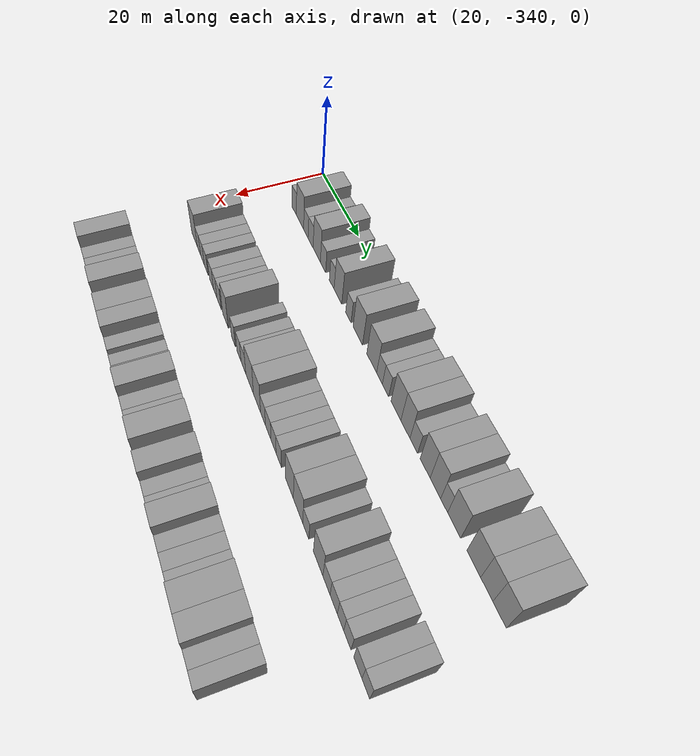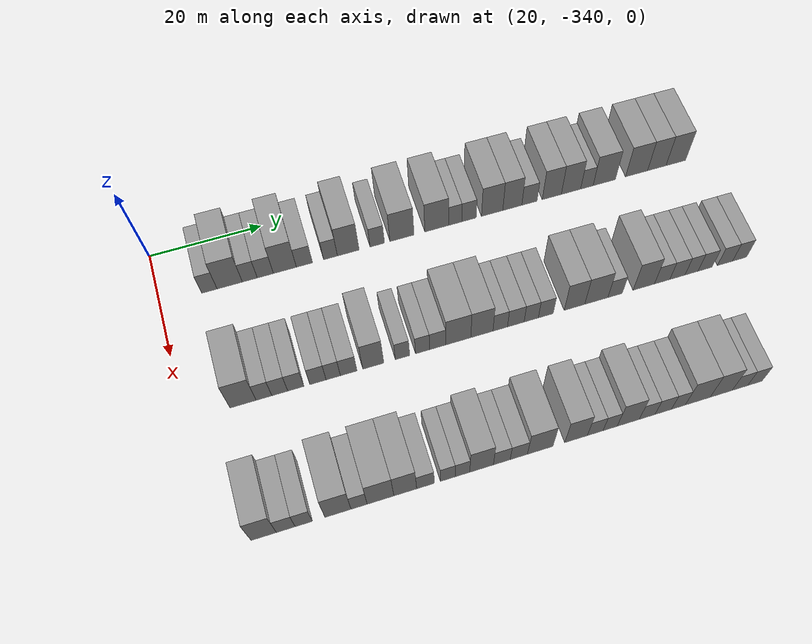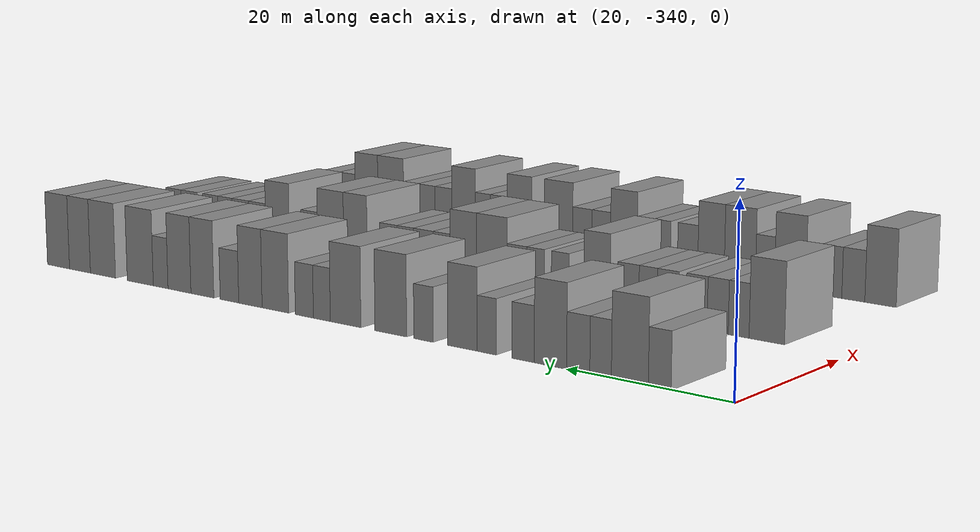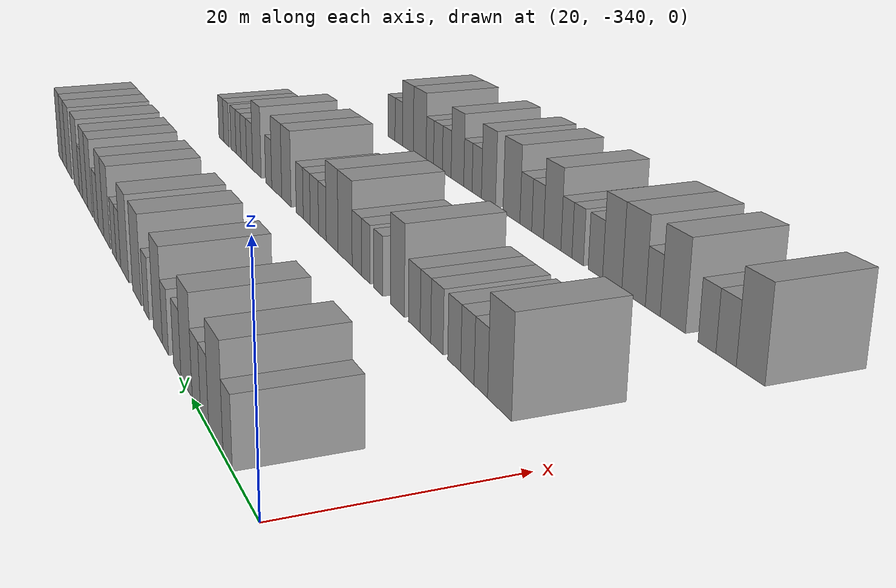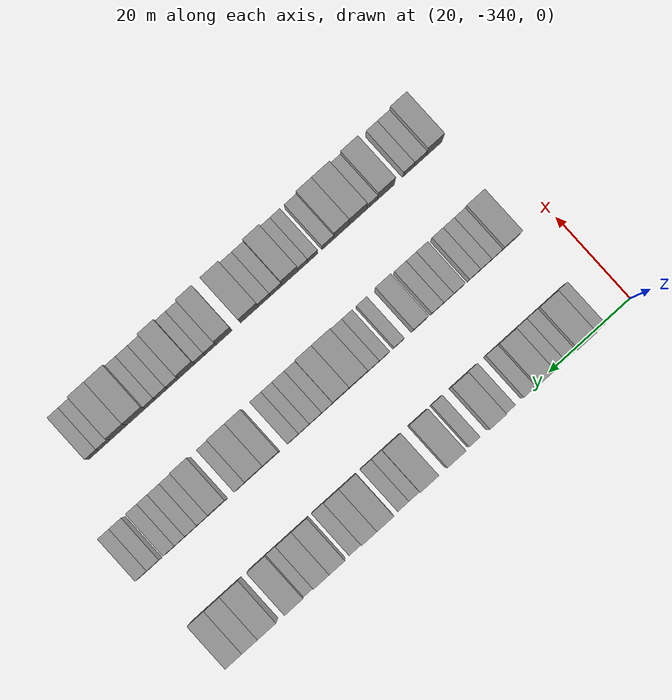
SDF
<sdf version="1.6">
 <world name="default">
  <model name="building_14">
   <static>1</static>
   <pose>25.0000 -331.3287 0 0.000000 0.000000 0.000000</pose>
   <link name="link">
    <pose>0 0 3.00 0 0 0</pose>
    <collision name="collision"><geometry><box><size>10.0000 2.6767 6.0000</size></box></geometry></collision>
    <visual name="visual">
     <cast_shadows>0</cast_shadows>
     <geometry><box><size>10.0000 2.6767 6.0000</size></box></geometry>
     <material>
      <script>
       <uri>model://grey_wall/materials/scripts</uri>
       <uri>model://grey_wall/materials/textures</uri>
       <name>vrc/grey_wall</name>
      </script>
     </material>
    </visual>
   </link>
  </model>
  <model name="building_15">
   <static>1</static>
   <pose>25.0000 -327.7732 0 0.000000 0.000000 0.000000</pose>
   <link name="link">
    <pose>0 0 4.50 0 0 0</pose>
    <collision name="collision"><geometry><box><size>10.0000 4.4344 9.0000</size></box></geometry></collision>
    <visual name="visual">
     <cast_shadows>0</cast_shadows>
     <geometry><box><size>10.0000 4.4344 9.0000</size></box></geometry>
     <material>
      <script>
       <uri>model://grey_wall/materials/scripts</uri>
       <uri>model://grey_wall/materials/textures</uri>
       <name>vrc/grey_wall</name>
      </script>
     </material>
    </visual>
   </link>
  </model>
  <model name="building_16">
   <static>1</static>
   <pose>25.0000 -324.2370 0 0.000000 0.000000 0.000000</pose>
   <link name="link">
    <pose>0 0 3.00 0 0 0</pose>
    <collision name="collision"><geometry><box><size>10.0000 2.6379 6.0000</size></box></geometry></collision>
    <visual name="visual">
     <cast_shadows>0</cast_shadows>
     <geometry><box><size>10.0000 2.6379 6.0000</size></box></geometry>
     <material>
      <script>
       <uri>model://grey_wall/materials/scripts</uri>
       <uri>model://grey_wall/materials/textures</uri>
       <name>vrc/grey_wall</name>
      </script>
     </material>
    </visual>
   </link>
  </model>
  <model name="building_17">
   <static>1</static>
   <pose>25.0000 -321.4824 0 0.000000 0.000000 0.000000</pose>
   <link name="link">
    <pose>0 0 3.00 0 0 0</pose>
    <collision name="collision"><geometry><box><size>10.0000 2.8713 6.0000</size></box></geometry></collision>
    <visual name="visual">
     <cast_shadows>0</cast_shadows>
     <geometry><box><size>10.0000 2.8713 6.0000</size></box></geometry>
     <material>
      <script>
       <uri>model://grey_wall/materials/scripts</uri>
       <uri>model://grey_wall/materials/textures</uri>
       <name>vrc/grey_wall</name>
      </script>
     </material>
    </visual>
   </link>
  </model>
  <model name="building_18">
   <static>1</static>
   <pose>25.0000 -318.0040 0 0.000000 0.000000 0.000000</pose>
   <link name="link">
    <pose>0 0 4.50 0 0 0</pose>
    <collision name="collision"><geometry><box><size>10.0000 4.0855 9.0000</size></box></geometry></collision>
    <visual name="visual">
     <cast_shadows>0</cast_shadows>
     <geometry><box><size>10.0000 4.0855 9.0000</size></box></geometry>
     <material>
      <script>
       <uri>model://grey_wall/materials/scripts</uri>
       <uri>model://grey_wall/materials/textures</uri>
       <name>vrc/grey_wall</name>
      </script>
     </material>
    </visual>
   </link>
  </model>
  <model name="building_19">
   <static>1</static>
   <pose>25.0000 -314.5131 0 0.000000 0.000000 0.000000</pose>
   <link name="link">
    <pose>0 0 3.00 0 0 0</pose>
    <collision name="collision"><geometry><box><size>10.0000 2.8964 6.0000</size></box></geometry></collision>
    <visual name="visual">
     <cast_shadows>0</cast_shadows>
     <geometry><box><size>10.0000 2.8964 6.0000</size></box></geometry>
     <material>
      <script>
       <uri>model://grey_wall/materials/scripts</uri>
       <uri>model://grey_wall/materials/textures</uri>
       <name>vrc/grey_wall</name>
      </script>
     </material>
    </visual>
   </link>
  </model>
  <model name="building_20">
   <static>1</static>
   <pose>25.0000 -309.8184 0 0.000000 0.000000 0.000000</pose>
   <link name="link">
    <pose>0 0 3.00 0 0 0</pose>
    <collision name="collision"><geometry><box><size>10.0000 2.4929 6.0000</size></box></geometry></collision>
    <visual name="visual">
     <cast_shadows>0</cast_shadows>
     <geometry><box><size>10.0000 2.4929 6.0000</size></box></geometry>
     <material>
      <script>
       <uri>model://grey_wall/materials/scripts</uri>
       <uri>model://grey_wall/materials/textures</uri>
       <name>vrc/grey_wall</name>
      </script>
     </material>
    </visual>
   </link>
  </model>
  <model name="building_21">
   <static>1</static>
   <pose>25.0000 -306.5983 0 0.000000 0.000000 0.000000</pose>
   <link name="link">
    <pose>0 0 4.50 0 0 0</pose>
    <collision name="collision"><geometry><box><size>10.0000 3.9474 9.0000</size></box></geometry></collision>
    <visual name="visual">
     <cast_shadows>0</cast_shadows>
     <geometry><box><size>10.0000 3.9474 9.0000</size></box></geometry>
     <material>
      <script>
       <uri>model://grey_wall/materials/scripts</uri>
       <uri>model://grey_wall/materials/textures</uri>
       <name>vrc/grey_wall</name>
      </script>
     </material>
    </visual>
   </link>
  </model>
  <model name="building_22">
   <static>1</static>
   <pose>25.0000 -301.3023 0 0.000000 0.000000 0.000000</pose>
   <link name="link">
    <pose>0 0 3.00 0 0 0</pose>
    <collision name="collision"><geometry><box><size>10.0000 2.6446 6.0000</size></box></geometry></collision>
    <visual name="visual">
     <cast_shadows>0</cast_shadows>
     <geometry><box><size>10.0000 2.6446 6.0000</size></box></geometry>
     <material>
      <script>
       <uri>model://grey_wall/materials/scripts</uri>
       <uri>model://grey_wall/materials/textures</uri>
       <name>vrc/grey_wall</name>
      </script>
     </material>
    </visual>
   </link>
  </model>
  <model name="building_23">
   <static>1</static>
   <pose>25.0000 -296.7561 0 0.000000 0.000000 0.000000</pose>
   <link name="link">
    <pose>0 0 4.50 0 0 0</pose>
    <collision name="collision"><geometry><box><size>10.0000 4.4478 9.0000</size></box></geometry></collision>
    <visual name="visual">
     <cast_shadows>0</cast_shadows>
     <geometry><box><size>10.0000 4.4478 9.0000</size></box></geometry>
     <material>
      <script>
       <uri>model://grey_wall/materials/scripts</uri>
       <uri>model://grey_wall/materials/textures</uri>
       <name>vrc/grey_wall</name>
      </script>
     </material>
    </visual>
   </link>
  </model>
  <model name="building_24">
   <static>1</static>
   <pose>25.0000 -290.3168 0 0.000000 0.000000 0.000000</pose>
   <link name="link">
    <pose>0 0 4.50 0 0 0</pose>
    <collision name="collision"><geometry><box><size>10.0000 4.4309 9.0000</size></box></geometry></collision>
    <visual name="visual">
     <cast_shadows>0</cast_shadows>
     <geometry><box><size>10.0000 4.4309 9.0000</size></box></geometry>
     <material>
      <script>
       <uri>model://grey_wall/materials/scripts</uri>
       <uri>model://grey_wall/materials/textures</uri>
       <name>vrc/grey_wall</name>
      </script>
     </material>
    </visual>
   </link>
  </model>
  <model name="building_25">
   <static>1</static>
   <pose>25.0000 -286.8578 0 0.000000 0.000000 0.000000</pose>
   <link name="link">
    <pose>0 0 3.00 0 0 0</pose>
    <collision name="collision"><geometry><box><size>10.0000 2.4871 6.0000</size></box></geometry></collision>
    <visual name="visual">
     <cast_shadows>0</cast_shadows>
     <geometry><box><size>10.0000 2.4871 6.0000</size></box></geometry>
     <material>
      <script>
       <uri>model://grey_wall/materials/scripts</uri>
       <uri>model://grey_wall/materials/textures</uri>
       <name>vrc/grey_wall</name>
      </script>
     </material>
    </visual>
   </link>
  </model>
  <model name="building_26">
   <static>1</static>
   <pose>25.0000 -284.2672 0 0.000000 0.000000 0.000000</pose>
   <link name="link">
    <pose>0 0 3.00 0 0 0</pose>
    <collision name="collision"><geometry><box><size>10.0000 2.6942 6.0000</size></box></geometry></collision>
    <visual name="visual">
     <cast_shadows>0</cast_shadows>
     <geometry><box><size>10.0000 2.6942 6.0000</size></box></geometry>
     <material>
      <script>
       <uri>model://grey_wall/materials/scripts</uri>
       <uri>model://grey_wall/materials/textures</uri>
       <name>vrc/grey_wall</name>
      </script>
     </material>
    </visual>
   </link>
  </model>
  <model name="building_27">
   <static>1</static>
   <pose>25.0000 -279.8970 0 0.000000 0.000000 0.000000</pose>
   <link name="link">
    <pose>0 0 4.50 0 0 0</pose>
    <collision name="collision"><geometry><box><size>10.0000 4.0460 9.0000</size></box></geometry></collision>
    <visual name="visual">
     <cast_shadows>0</cast_shadows>
     <geometry><box><size>10.0000 4.0460 9.0000</size></box></geometry>
     <material>
      <script>
       <uri>model://grey_wall/materials/scripts</uri>
       <uri>model://grey_wall/materials/textures</uri>
       <name>vrc/grey_wall</name>
      </script>
     </material>
    </visual>
   </link>
  </model>
  <model name="building_28">
   <static>1</static>
   <pose>25.0000 -276.0623 0 0.000000 0.000000 0.000000</pose>
   <link name="link">
    <pose>0 0 4.50 0 0 0</pose>
    <collision name="collision"><geometry><box><size>10.0000 3.6234 9.0000</size></box></geometry></collision>
    <visual name="visual">
     <cast_shadows>0</cast_shadows>
     <geometry><box><size>10.0000 3.6234 9.0000</size></box></geometry>
     <material>
      <script>
       <uri>model://grey_wall/materials/scripts</uri>
       <uri>model://grey_wall/materials/textures</uri>
       <name>vrc/grey_wall</name>
      </script>
     </material>
    </visual>
   </link>
  </model>
  <model name="building_29">
   <static>1</static>
   <pose>25.0000 -272.7906 0 0.000000 0.000000 0.000000</pose>
   <link name="link">
    <pose>0 0 3.00 0 0 0</pose>
    <collision name="collision"><geometry><box><size>10.0000 2.9201 6.0000</size></box></geometry></collision>
    <visual name="visual">
     <cast_shadows>0</cast_shadows>
     <geometry><box><size>10.0000 2.9201 6.0000</size></box></geometry>
     <material>
      <script>
       <uri>model://grey_wall/materials/scripts</uri>
       <uri>model://grey_wall/materials/textures</uri>
       <name>vrc/grey_wall</name>
      </script>
     </material>
    </visual>
   </link>
  </model>
  <model name="building_30">
   <static>1</static>
   <pose>25.0000 -268.4911 0 0.000000 0.000000 0.000000</pose>
   <link name="link">
    <pose>0 0 4.50 0 0 0</pose>
    <collision name="collision"><geometry><box><size>10.0000 3.6790 9.0000</size></box></geometry></collision>
    <visual name="visual">
     <cast_shadows>0</cast_shadows>
     <geometry><box><size>10.0000 3.6790 9.0000</size></box></geometry>
     <material>
      <script>
       <uri>model://grey_wall/materials/scripts</uri>
       <uri>model://grey_wall/materials/textures</uri>
       <name>vrc/grey_wall</name>
      </script>
     </material>
    </visual>
   </link>
  </model>
  <model name="building_31">
   <static>1</static>
   <pose>25.0000 -264.7799 0 0.000000 0.000000 0.000000</pose>
   <link name="link">
    <pose>0 0 4.50 0 0 0</pose>
    <collision name="collision"><geometry><box><size>10.0000 3.7434 9.0000</size></box></geometry></collision>
    <visual name="visual">
     <cast_shadows>0</cast_shadows>
     <geometry><box><size>10.0000 3.7434 9.0000</size></box></geometry>
     <material>
      <script>
       <uri>model://grey_wall/materials/scripts</uri>
       <uri>model://grey_wall/materials/textures</uri>
       <name>vrc/grey_wall</name>
      </script>
     </material>
    </visual>
   </link>
  </model>
  <model name="building_32">
   <static>1</static>
   <pose>25.0000 -261.6918 0 0.000000 0.000000 0.000000</pose>
   <link name="link">
    <pose>0 0 3.00 0 0 0</pose>
    <collision name="collision"><geometry><box><size>10.0000 2.4328 6.0000</size></box></geometry></collision>
    <visual name="visual">
     <cast_shadows>0</cast_shadows>
     <geometry><box><size>10.0000 2.4328 6.0000</size></box></geometry>
     <material>
      <script>
       <uri>model://grey_wall/materials/scripts</uri>
       <uri>model://grey_wall/materials/textures</uri>
       <name>vrc/grey_wall</name>
      </script>
     </material>
    </visual>
   </link>
  </model>
  <model name="building_33">
   <static>1</static>
   <pose>25.0000 -258.2881 0 0.000000 0.000000 0.000000</pose>
   <link name="link">
    <pose>0 0 4.50 0 0 0</pose>
    <collision name="collision"><geometry><box><size>10.0000 4.3746 9.0000</size></box></geometry></collision>
    <visual name="visual">
     <cast_shadows>0</cast_shadows>
     <geometry><box><size>10.0000 4.3746 9.0000</size></box></geometry>
     <material>
      <script>
       <uri>model://grey_wall/materials/scripts</uri>
       <uri>model://grey_wall/materials/textures</uri>
       <name>vrc/grey_wall</name>
      </script>
     </material>
    </visual>
   </link>
  </model>
  <model name="building_34">
   <static>1</static>
   <pose>25.0000 -251.9306 0 0.000000 0.000000 0.000000</pose>
   <link name="link">
    <pose>0 0 4.50 0 0 0</pose>
    <collision name="collision"><geometry><box><size>10.0000 4.3406 9.0000</size></box></geometry></collision>
    <visual name="visual">
     <cast_shadows>0</cast_shadows>
     <geometry><box><size>10.0000 4.3406 9.0000</size></box></geometry>
     <material>
      <script>
       <uri>model://grey_wall/materials/scripts</uri>
       <uri>model://grey_wall/materials/textures</uri>
       <name>vrc/grey_wall</name>
      </script>
     </material>
    </visual>
   </link>
  </model>
  <model name="building_35">
   <static>1</static>
   <pose>25.0000 -247.9200 0 0.000000 0.000000 0.000000</pose>
   <link name="link">
    <pose>0 0 4.50 0 0 0</pose>
    <collision name="collision"><geometry><box><size>10.0000 3.6805 9.0000</size></box></geometry></collision>
    <visual name="visual">
     <cast_shadows>0</cast_shadows>
     <geometry><box><size>10.0000 3.6805 9.0000</size></box></geometry>
     <material>
      <script>
       <uri>model://grey_wall/materials/scripts</uri>
       <uri>model://grey_wall/materials/textures</uri>
       <name>vrc/grey_wall</name>
      </script>
     </material>
    </visual>
   </link>
  </model>
  <model name="building_36">
   <static>1</static>
   <pose>25.0000 -244.1169 0 0.000000 0.000000 0.000000</pose>
   <link name="link">
    <pose>0 0 4.50 0 0 0</pose>
    <collision name="collision"><geometry><box><size>10.0000 3.9257 9.0000</size></box></geometry></collision>
    <visual name="visual">
     <cast_shadows>0</cast_shadows>
     <geometry><box><size>10.0000 3.9257 9.0000</size></box></geometry>
     <material>
      <script>
       <uri>model://grey_wall/materials/scripts</uri>
       <uri>model://grey_wall/materials/textures</uri>
       <name>vrc/grey_wall</name>
      </script>
     </material>
    </visual>
   </link>
  </model>
  <model name="building_203">
   <static>1</static>
   <pose>47.0000 -330.2119 0 0.000000 0.000000 0.000000</pose>
   <link name="link">
    <pose>0 0 4.50 0 0 0</pose>
    <collision name="collision"><geometry><box><size>10.0000 4.3527 9.0000</size></box></geometry></collision>
    <visual name="visual">
     <cast_shadows>0</cast_shadows>
     <geometry><box><size>10.0000 4.3527 9.0000</size></box></geometry>
     <material>
      <script>
       <uri>model://grey_wall/materials/scripts</uri>
       <uri>model://grey_wall/materials/textures</uri>
       <name>vrc/grey_wall</name>
      </script>
     </material>
    </visual>
   </link>
  </model>
  <model name="building_204">
   <static>1</static>
   <pose>47.0000 -326.7335 0 0.000000 0.000000 0.000000</pose>
   <link name="link">
    <pose>0 0 3.00 0 0 0</pose>
    <collision name="collision"><geometry><box><size>10.0000 2.6040 6.0000</size></box></geometry></collision>
    <visual name="visual">
     <cast_shadows>0</cast_shadows>
     <geometry><box><size>10.0000 2.6040 6.0000</size></box></geometry>
     <material>
      <script>
       <uri>model://grey_wall/materials/scripts</uri>
       <uri>model://grey_wall/materials/textures</uri>
       <name>vrc/grey_wall</name>
      </script>
     </material>
    </visual>
   </link>
  </model>
  <model name="building_205">
   <static>1</static>
   <pose>47.0000 -324.0924 0 0.000000 0.000000 0.000000</pose>
   <link name="link">
    <pose>0 0 3.00 0 0 0</pose>
    <collision name="collision"><geometry><box><size>10.0000 2.6783 6.0000</size></box></geometry></collision>
    <visual name="visual">
     <cast_shadows>0</cast_shadows>
     <geometry><box><size>10.0000 2.6783 6.0000</size></box></geometry>
     <material>
      <script>
       <uri>model://grey_wall/materials/scripts</uri>
       <uri>model://grey_wall/materials/textures</uri>
       <name>vrc/grey_wall</name>
      </script>
     </material>
    </visual>
   </link>
  </model>
  <model name="building_206">
   <static>1</static>
   <pose>47.0000 -321.3945 0 0.000000 0.000000 0.000000</pose>
   <link name="link">
    <pose>0 0 3.00 0 0 0</pose>
    <collision name="collision"><geometry><box><size>10.0000 2.7174 6.0000</size></box></geometry></collision>
    <visual name="visual">
     <cast_shadows>0</cast_shadows>
     <geometry><box><size>10.0000 2.7174 6.0000</size></box></geometry>
     <material>
      <script>
       <uri>model://grey_wall/materials/scripts</uri>
       <uri>model://grey_wall/materials/textures</uri>
       <name>vrc/grey_wall</name>
      </script>
     </material>
    </visual>
   </link>
  </model>
  <model name="building_207">
   <static>1</static>
   <pose>47.0000 -317.6592 0 0.000000 0.000000 0.000000</pose>
   <link name="link">
    <pose>0 0 3.00 0 0 0</pose>
    <collision name="collision"><geometry><box><size>10.0000 2.7532 6.0000</size></box></geometry></collision>
    <visual name="visual">
     <cast_shadows>0</cast_shadows>
     <geometry><box><size>10.0000 2.7532 6.0000</size></box></geometry>
     <material>
      <script>
       <uri>model://grey_wall/materials/scripts</uri>
       <uri>model://grey_wall/materials/textures</uri>
       <name>vrc/grey_wall</name>
      </script>
     </material>
    </visual>
   </link>
  </model>
  <model name="building_208">
   <static>1</static>
   <pose>47.0000 -315.0698 0 0.000000 0.000000 0.000000</pose>
   <link name="link">
    <pose>0 0 3.00 0 0 0</pose>
    <collision name="collision"><geometry><box><size>10.0000 2.4256 6.0000</size></box></geometry></collision>
    <visual name="visual">
     <cast_shadows>0</cast_shadows>
     <geometry><box><size>10.0000 2.4256 6.0000</size></box></geometry>
     <material>
      <script>
       <uri>model://grey_wall/materials/scripts</uri>
       <uri>model://grey_wall/materials/textures</uri>
       <name>vrc/grey_wall</name>
      </script>
     </material>
    </visual>
   </link>
  </model>
  <model name="building_209">
   <static>1</static>
   <pose>47.0000 -312.4344 0 0.000000 0.000000 0.000000</pose>
   <link name="link">
    <pose>0 0 3.00 0 0 0</pose>
    <collision name="collision"><geometry><box><size>10.0000 2.8453 6.0000</size></box></geometry></collision>
    <visual name="visual">
     <cast_shadows>0</cast_shadows>
     <geometry><box><size>10.0000 2.8453 6.0000</size></box></geometry>
     <material>
      <script>
       <uri>model://grey_wall/materials/scripts</uri>
       <uri>model://grey_wall/materials/textures</uri>
       <name>vrc/grey_wall</name>
      </script>
     </material>
    </visual>
   </link>
  </model>
  <model name="building_210">
   <static>1</static>
   <pose>47.0000 -308.2078 0 0.000000 0.000000 0.000000</pose>
   <link name="link">
    <pose>0 0 4.50 0 0 0</pose>
    <collision name="collision"><geometry><box><size>10.0000 3.6080 9.0000</size></box></geometry></collision>
    <visual name="visual">
     <cast_shadows>0</cast_shadows>
     <geometry><box><size>10.0000 3.6080 9.0000</size></box></geometry>
     <material>
      <script>
       <uri>model://grey_wall/materials/scripts</uri>
       <uri>model://grey_wall/materials/textures</uri>
       <name>vrc/grey_wall</name>
      </script>
     </material>
    </visual>
   </link>
  </model>
  <model name="building_211">
   <static>1</static>
   <pose>47.0000 -303.1569 0 0.000000 0.000000 0.000000</pose>
   <link name="link">
    <pose>0 0 3.00 0 0 0</pose>
    <collision name="collision"><geometry><box><size>10.0000 2.4937 6.0000</size></box></geometry></collision>
    <visual name="visual">
     <cast_shadows>0</cast_shadows>
     <geometry><box><size>10.0000 2.4937 6.0000</size></box></geometry>
     <material>
      <script>
       <uri>model://grey_wall/materials/scripts</uri>
       <uri>model://grey_wall/materials/textures</uri>
       <name>vrc/grey_wall</name>
      </script>
     </material>
    </visual>
   </link>
  </model>
  <model name="building_212">
   <static>1</static>
   <pose>47.0000 -299.6671 0 0.000000 0.000000 0.000000</pose>
   <link name="link">
    <pose>0 0 3.00 0 0 0</pose>
    <collision name="collision"><geometry><box><size>10.0000 2.4860 6.0000</size></box></geometry></collision>
    <visual name="visual">
     <cast_shadows>0</cast_shadows>
     <geometry><box><size>10.0000 2.4860 6.0000</size></box></geometry>
     <material>
      <script>
       <uri>model://grey_wall/materials/scripts</uri>
       <uri>model://grey_wall/materials/textures</uri>
       <name>vrc/grey_wall</name>
      </script>
     </material>
    </visual>
   </link>
  </model>
  <model name="building_213">
   <static>1</static>
   <pose>47.0000 -297.0243 0 0.000000 0.000000 0.000000</pose>
   <link name="link">
    <pose>0 0 3.00 0 0 0</pose>
    <collision name="collision"><geometry><box><size>10.0000 2.7996 6.0000</size></box></geometry></collision>
    <visual name="visual">
     <cast_shadows>0</cast_shadows>
     <geometry><box><size>10.0000 2.7996 6.0000</size></box></geometry>
     <material>
      <script>
       <uri>model://grey_wall/materials/scripts</uri>
       <uri>model://grey_wall/materials/textures</uri>
       <name>vrc/grey_wall</name>
      </script>
     </material>
    </visual>
   </link>
  </model>
  <model name="building_214">
   <static>1</static>
   <pose>47.0000 -293.4089 0 0.000000 0.000000 0.000000</pose>
   <link name="link">
    <pose>0 0 4.50 0 0 0</pose>
    <collision name="collision"><geometry><box><size>10.0000 4.4312 9.0000</size></box></geometry></collision>
    <visual name="visual">
     <cast_shadows>0</cast_shadows>
     <geometry><box><size>10.0000 4.4312 9.0000</size></box></geometry>
     <material>
      <script>
       <uri>model://grey_wall/materials/scripts</uri>
       <uri>model://grey_wall/materials/textures</uri>
       <name>vrc/grey_wall</name>
      </script>
     </material>
    </visual>
   </link>
  </model>
  <model name="building_215">
   <static>1</static>
   <pose>47.0000 -289.2270 0 0.000000 0.000000 0.000000</pose>
   <link name="link">
    <pose>0 0 4.50 0 0 0</pose>
    <collision name="collision"><geometry><box><size>10.0000 3.9327 9.0000</size></box></geometry></collision>
    <visual name="visual">
     <cast_shadows>0</cast_shadows>
     <geometry><box><size>10.0000 3.9327 9.0000</size></box></geometry>
     <material>
      <script>
       <uri>model://grey_wall/materials/scripts</uri>
       <uri>model://grey_wall/materials/textures</uri>
       <name>vrc/grey_wall</name>
      </script>
     </material>
    </visual>
   </link>
  </model>
  <model name="building_216">
   <static>1</static>
   <pose>47.0000 -285.9589 0 0.000000 0.000000 0.000000</pose>
   <link name="link">
    <pose>0 0 3.00 0 0 0</pose>
    <collision name="collision"><geometry><box><size>10.0000 2.6035 6.0000</size></box></geometry></collision>
    <visual name="visual">
     <cast_shadows>0</cast_shadows>
     <geometry><box><size>10.0000 2.6035 6.0000</size></box></geometry>
     <material>
      <script>
       <uri>model://grey_wall/materials/scripts</uri>
       <uri>model://grey_wall/materials/textures</uri>
       <name>vrc/grey_wall</name>
      </script>
     </material>
    </visual>
   </link>
  </model>
  <model name="building_217">
   <static>1</static>
   <pose>47.0000 -283.1711 0 0.000000 0.000000 0.000000</pose>
   <link name="link">
    <pose>0 0 3.00 0 0 0</pose>
    <collision name="collision"><geometry><box><size>10.0000 2.9721 6.0000</size></box></geometry></collision>
    <visual name="visual">
     <cast_shadows>0</cast_shadows>
     <geometry><box><size>10.0000 2.9721 6.0000</size></box></geometry>
     <material>
      <script>
       <uri>model://grey_wall/materials/scripts</uri>
       <uri>model://grey_wall/materials/textures</uri>
       <name>vrc/grey_wall</name>
      </script>
     </material>
    </visual>
   </link>
  </model>
  <model name="building_218">
   <static>1</static>
   <pose>47.0000 -280.4014 0 0.000000 0.000000 0.000000</pose>
   <link name="link">
    <pose>0 0 3.00 0 0 0</pose>
    <collision name="collision"><geometry><box><size>10.0000 2.5673 6.0000</size></box></geometry></collision>
    <visual name="visual">
     <cast_shadows>0</cast_shadows>
     <geometry><box><size>10.0000 2.5673 6.0000</size></box></geometry>
     <material>
      <script>
       <uri>model://grey_wall/materials/scripts</uri>
       <uri>model://grey_wall/materials/textures</uri>
       <name>vrc/grey_wall</name>
      </script>
     </material>
    </visual>
   </link>
  </model>
  <model name="building_219">
   <static>1</static>
   <pose>47.0000 -277.7692 0 0.000000 0.000000 0.000000</pose>
   <link name="link">
    <pose>0 0 3.00 0 0 0</pose>
    <collision name="collision"><geometry><box><size>10.0000 2.6970 6.0000</size></box></geometry></collision>
    <visual name="visual">
     <cast_shadows>0</cast_shadows>
     <geometry><box><size>10.0000 2.6970 6.0000</size></box></geometry>
     <material>
      <script>
       <uri>model://grey_wall/materials/scripts</uri>
       <uri>model://grey_wall/materials/textures</uri>
       <name>vrc/grey_wall</name>
      </script>
     </material>
    </visual>
   </link>
  </model>
  <model name="building_220">
   <static>1</static>
   <pose>47.0000 -272.5467 0 0.000000 0.000000 0.000000</pose>
   <link name="link">
    <pose>0 0 4.50 0 0 0</pose>
    <collision name="collision"><geometry><box><size>10.0000 3.7481 9.0000</size></box></geometry></collision>
    <visual name="visual">
     <cast_shadows>0</cast_shadows>
     <geometry><box><size>10.0000 3.7481 9.0000</size></box></geometry>
     <material>
      <script>
       <uri>model://grey_wall/materials/scripts</uri>
       <uri>model://grey_wall/materials/textures</uri>
       <name>vrc/grey_wall</name>
      </script>
     </material>
    </visual>
   </link>
  </model>
  <model name="building_221">
   <static>1</static>
   <pose>47.0000 -268.5493 0 0.000000 0.000000 0.000000</pose>
   <link name="link">
    <pose>0 0 4.50 0 0 0</pose>
    <collision name="collision"><geometry><box><size>10.0000 4.2468 9.0000</size></box></geometry></collision>
    <visual name="visual">
     <cast_shadows>0</cast_shadows>
     <geometry><box><size>10.0000 4.2468 9.0000</size></box></geometry>
     <material>
      <script>
       <uri>model://grey_wall/materials/scripts</uri>
       <uri>model://grey_wall/materials/textures</uri>
       <name>vrc/grey_wall</name>
      </script>
     </material>
    </visual>
   </link>
  </model>
  <model name="building_222">
   <static>1</static>
   <pose>47.0000 -265.0817 0 0.000000 0.000000 0.000000</pose>
   <link name="link">
    <pose>0 0 3.00 0 0 0</pose>
    <collision name="collision"><geometry><box><size>10.0000 2.6883 6.0000</size></box></geometry></collision>
    <visual name="visual">
     <cast_shadows>0</cast_shadows>
     <geometry><box><size>10.0000 2.6883 6.0000</size></box></geometry>
     <material>
      <script>
       <uri>model://grey_wall/materials/scripts</uri>
       <uri>model://grey_wall/materials/textures</uri>
       <name>vrc/grey_wall</name>
      </script>
     </material>
    </visual>
   </link>
  </model>
  <model name="building_223">
   <static>1</static>
   <pose>47.0000 -259.7424 0 0.000000 0.000000 0.000000</pose>
   <link name="link">
    <pose>0 0 4.50 0 0 0</pose>
    <collision name="collision"><geometry><box><size>10.0000 3.9904 9.0000</size></box></geometry></collision>
    <visual name="visual">
     <cast_shadows>0</cast_shadows>
     <geometry><box><size>10.0000 3.9904 9.0000</size></box></geometry>
     <material>
      <script>
       <uri>model://grey_wall/materials/scripts</uri>
       <uri>model://grey_wall/materials/textures</uri>
       <name>vrc/grey_wall</name>
      </script>
     </material>
    </visual>
   </link>
  </model>
  <model name="building_224">
   <static>1</static>
   <pose>47.0000 -256.3071 0 0.000000 0.000000 0.000000</pose>
   <link name="link">
    <pose>0 0 3.00 0 0 0</pose>
    <collision name="collision"><geometry><box><size>10.0000 2.8803 6.0000</size></box></geometry></collision>
    <visual name="visual">
     <cast_shadows>0</cast_shadows>
     <geometry><box><size>10.0000 2.8803 6.0000</size></box></geometry>
     <material>
      <script>
       <uri>model://grey_wall/materials/scripts</uri>
       <uri>model://grey_wall/materials/textures</uri>
       <name>vrc/grey_wall</name>
      </script>
     </material>
    </visual>
   </link>
  </model>
  <model name="building_225">
   <static>1</static>
   <pose>47.0000 -253.4334 0 0.000000 0.000000 0.000000</pose>
   <link name="link">
    <pose>0 0 3.00 0 0 0</pose>
    <collision name="collision"><geometry><box><size>10.0000 2.8670 6.0000</size></box></geometry></collision>
    <visual name="visual">
     <cast_shadows>0</cast_shadows>
     <geometry><box><size>10.0000 2.8670 6.0000</size></box></geometry>
     <material>
      <script>
       <uri>model://grey_wall/materials/scripts</uri>
       <uri>model://grey_wall/materials/textures</uri>
       <name>vrc/grey_wall</name>
      </script>
     </material>
    </visual>
   </link>
  </model>
  <model name="building_226">
   <static>1</static>
   <pose>47.0000 -250.7729 0 0.000000 0.000000 0.000000</pose>
   <link name="link">
    <pose>0 0 3.00 0 0 0</pose>
    <collision name="collision"><geometry><box><size>10.0000 2.4540 6.0000</size></box></geometry></collision>
    <visual name="visual">
     <cast_shadows>0</cast_shadows>
     <geometry><box><size>10.0000 2.4540 6.0000</size></box></geometry>
     <material>
      <script>
       <uri>model://grey_wall/materials/scripts</uri>
       <uri>model://grey_wall/materials/textures</uri>
       <name>vrc/grey_wall</name>
      </script>
     </material>
    </visual>
   </link>
  </model>
  <model name="building_227">
   <static>1</static>
   <pose>47.0000 -248.2055 0 0.000000 0.000000 0.000000</pose>
   <link name="link">
    <pose>0 0 3.00 0 0 0</pose>
    <collision name="collision"><geometry><box><size>10.0000 2.6808 6.0000</size></box></geometry></collision>
    <visual name="visual">
     <cast_shadows>0</cast_shadows>
     <geometry><box><size>10.0000 2.6808 6.0000</size></box></geometry>
     <material>
      <script>
       <uri>model://grey_wall/materials/scripts</uri>
       <uri>model://grey_wall/materials/textures</uri>
       <name>vrc/grey_wall</name>
      </script>
     </material>
    </visual>
   </link>
  </model>
  <model name="building_228">
   <static>1</static>
   <pose>47.0000 -244.4098 0 0.000000 0.000000 0.000000</pose>
   <link name="link">
    <pose>0 0 3.00 0 0 0</pose>
    <collision name="collision"><geometry><box><size>10.0000 2.9105 6.0000</size></box></geometry></collision>
    <visual name="visual">
     <cast_shadows>0</cast_shadows>
     <geometry><box><size>10.0000 2.9105 6.0000</size></box></geometry>
     <material>
      <script>
       <uri>model://grey_wall/materials/scripts</uri>
       <uri>model://grey_wall/materials/textures</uri>
       <name>vrc/grey_wall</name>
      </script>
     </material>
    </visual>
   </link>
  </model>
  <model name="building_229">
   <static>1</static>
   <pose>47.0000 -241.6061 0 0.000000 0.000000 0.000000</pose>
   <link name="link">
    <pose>0 0 3.00 0 0 0</pose>
    <collision name="collision"><geometry><box><size>10.0000 2.6969 6.0000</size></box></geometry></collision>
    <visual name="visual">
     <cast_shadows>0</cast_shadows>
     <geometry><box><size>10.0000 2.6969 6.0000</size></box></geometry>
     <material>
      <script>
       <uri>model://grey_wall/materials/scripts</uri>
       <uri>model://grey_wall/materials/textures</uri>
       <name>vrc/grey_wall</name>
      </script>
     </material>
    </visual>
   </link>
  </model>
  <model name="building_395">
   <static>1</static>
   <pose>69.0000 -331.7882 0 0.000000 0.000000 0.000000</pose>
   <link name="link">
    <pose>0 0 4.50 0 0 0</pose>
    <collision name="collision"><geometry><box><size>10.0000 3.9653 9.0000</size></box></geometry></collision>
    <visual name="visual">
     <cast_shadows>0</cast_shadows>
     <geometry><box><size>10.0000 3.9653 9.0000</size></box></geometry>
     <material>
      <script>
       <uri>model://grey_wall/materials/scripts</uri>
       <uri>model://grey_wall/materials/textures</uri>
       <name>vrc/grey_wall</name>
      </script>
     </material>
    </visual>
   </link>
  </model>
  <model name="building_396">
   <static>1</static>
   <pose>69.0000 -328.3248 0 0.000000 0.000000 0.000000</pose>
   <link name="link">
    <pose>0 0 3.00 0 0 0</pose>
    <collision name="collision"><geometry><box><size>10.0000 2.9615 6.0000</size></box></geometry></collision>
    <visual name="visual">
     <cast_shadows>0</cast_shadows>
     <geometry><box><size>10.0000 2.9615 6.0000</size></box></geometry>
     <material>
      <script>
       <uri>model://grey_wall/materials/scripts</uri>
       <uri>model://grey_wall/materials/textures</uri>
       <name>vrc/grey_wall</name>
      </script>
     </material>
    </visual>
   </link>
  </model>
  <model name="building_397">
   <static>1</static>
   <pose>69.0000 -325.4898 0 0.000000 0.000000 0.000000</pose>
   <link name="link">
    <pose>0 0 3.00 0 0 0</pose>
    <collision name="collision"><geometry><box><size>10.0000 2.7085 6.0000</size></box></geometry></collision>
    <visual name="visual">
     <cast_shadows>0</cast_shadows>
     <geometry><box><size>10.0000 2.7085 6.0000</size></box></geometry>
     <material>
      <script>
       <uri>model://grey_wall/materials/scripts</uri>
       <uri>model://grey_wall/materials/textures</uri>
       <name>vrc/grey_wall</name>
      </script>
     </material>
    </visual>
   </link>
  </model>
  <model name="building_398">
   <static>1</static>
   <pose>69.0000 -320.0526 0 0.000000 0.000000 0.000000</pose>
   <link name="link">
    <pose>0 0 4.50 0 0 0</pose>
    <collision name="collision"><geometry><box><size>10.0000 4.1660 9.0000</size></box></geometry></collision>
    <visual name="visual">
     <cast_shadows>0</cast_shadows>
     <geometry><box><size>10.0000 4.1660 9.0000</size></box></geometry>
     <material>
      <script>
       <uri>model://grey_wall/materials/scripts</uri>
       <uri>model://grey_wall/materials/textures</uri>
       <name>vrc/grey_wall</name>
      </script>
     </material>
    </visual>
   </link>
  </model>
  <model name="building_399">
   <static>1</static>
   <pose>69.0000 -316.6746 0 0.000000 0.000000 0.000000</pose>
   <link name="link">
    <pose>0 0 3.00 0 0 0</pose>
    <collision name="collision"><geometry><box><size>10.0000 2.5899 6.0000</size></box></geometry></collision>
    <visual name="visual">
     <cast_shadows>0</cast_shadows>
     <geometry><box><size>10.0000 2.5899 6.0000</size></box></geometry>
     <material>
      <script>
       <uri>model://grey_wall/materials/scripts</uri>
       <uri>model://grey_wall/materials/textures</uri>
       <name>vrc/grey_wall</name>
      </script>
     </material>
    </visual>
   </link>
  </model>
  <model name="building_400">
   <static>1</static>
   <pose>69.0000 -313.2295 0 0.000000 0.000000 0.000000</pose>
   <link name="link">
    <pose>0 0 4.50 0 0 0</pose>
    <collision name="collision"><geometry><box><size>10.0000 4.3005 9.0000</size></box></geometry></collision>
    <visual name="visual">
     <cast_shadows>0</cast_shadows>
     <geometry><box><size>10.0000 4.3005 9.0000</size></box></geometry>
     <material>
      <script>
       <uri>model://grey_wall/materials/scripts</uri>
       <uri>model://grey_wall/materials/textures</uri>
       <name>vrc/grey_wall</name>
      </script>
     </material>
    </visual>
   </link>
  </model>
  <model name="building_401">
   <static>1</static>
   <pose>69.0000 -309.2231 0 0.000000 0.000000 0.000000</pose>
   <link name="link">
    <pose>0 0 4.50 0 0 0</pose>
    <collision name="collision"><geometry><box><size>10.0000 3.7122 9.0000</size></box></geometry></collision>
    <visual name="visual">
     <cast_shadows>0</cast_shadows>
     <geometry><box><size>10.0000 3.7122 9.0000</size></box></geometry>
     <material>
      <script>
       <uri>model://grey_wall/materials/scripts</uri>
       <uri>model://grey_wall/materials/textures</uri>
       <name>vrc/grey_wall</name>
      </script>
     </material>
    </visual>
   </link>
  </model>
  <model name="building_402">
   <static>1</static>
   <pose>69.0000 -305.9225 0 0.000000 0.000000 0.000000</pose>
   <link name="link">
    <pose>0 0 3.00 0 0 0</pose>
    <collision name="collision"><geometry><box><size>10.0000 2.8890 6.0000</size></box></geometry></collision>
    <visual name="visual">
     <cast_shadows>0</cast_shadows>
     <geometry><box><size>10.0000 2.8890 6.0000</size></box></geometry>
     <material>
      <script>
       <uri>model://grey_wall/materials/scripts</uri>
       <uri>model://grey_wall/materials/textures</uri>
       <name>vrc/grey_wall</name>
      </script>
     </material>
    </visual>
   </link>
  </model>
  <model name="building_403">
   <static>1</static>
   <pose>69.0000 -302.2654 0 0.000000 0.000000 0.000000</pose>
   <link name="link">
    <pose>0 0 3.00 0 0 0</pose>
    <collision name="collision"><geometry><box><size>10.0000 2.4252 6.0000</size></box></geometry></collision>
    <visual name="visual">
     <cast_shadows>0</cast_shadows>
     <geometry><box><size>10.0000 2.4252 6.0000</size></box></geometry>
     <material>
      <script>
       <uri>model://grey_wall/materials/scripts</uri>
       <uri>model://grey_wall/materials/textures</uri>
       <name>vrc/grey_wall</name>
      </script>
     </material>
    </visual>
   </link>
  </model>
  <model name="building_404">
   <static>1</static>
   <pose>69.0000 -299.8462 0 0.000000 0.000000 0.000000</pose>
   <link name="link">
    <pose>0 0 3.00 0 0 0</pose>
    <collision name="collision"><geometry><box><size>10.0000 2.4133 6.0000</size></box></geometry></collision>
    <visual name="visual">
     <cast_shadows>0</cast_shadows>
     <geometry><box><size>10.0000 2.4133 6.0000</size></box></geometry>
     <material>
      <script>
       <uri>model://grey_wall/materials/scripts</uri>
       <uri>model://grey_wall/materials/textures</uri>
       <name>vrc/grey_wall</name>
      </script>
     </material>
    </visual>
   </link>
  </model>
  <model name="building_405">
   <static>1</static>
   <pose>69.0000 -296.6703 0 0.000000 0.000000 0.000000</pose>
   <link name="link">
    <pose>0 0 4.50 0 0 0</pose>
    <collision name="collision"><geometry><box><size>10.0000 3.9385 9.0000</size></box></geometry></collision>
    <visual name="visual">
     <cast_shadows>0</cast_shadows>
     <geometry><box><size>10.0000 3.9385 9.0000</size></box></geometry>
     <material>
      <script>
       <uri>model://grey_wall/materials/scripts</uri>
       <uri>model://grey_wall/materials/textures</uri>
       <name>vrc/grey_wall</name>
      </script>
     </material>
    </visual>
   </link>
  </model>
  <model name="building_406">
   <static>1</static>
   <pose>69.0000 -293.2971 0 0.000000 0.000000 0.000000</pose>
   <link name="link">
    <pose>0 0 3.00 0 0 0</pose>
    <collision name="collision"><geometry><box><size>10.0000 2.8079 6.0000</size></box></geometry></collision>
    <visual name="visual">
     <cast_shadows>0</cast_shadows>
     <geometry><box><size>10.0000 2.8079 6.0000</size></box></geometry>
     <material>
      <script>
       <uri>model://grey_wall/materials/scripts</uri>
       <uri>model://grey_wall/materials/textures</uri>
       <name>vrc/grey_wall</name>
      </script>
     </material>
    </visual>
   </link>
  </model>
  <model name="building_407">
   <static>1</static>
   <pose>69.0000 -290.4461 0 0.000000 0.000000 0.000000</pose>
   <link name="link">
    <pose>0 0 3.00 0 0 0</pose>
    <collision name="collision"><geometry><box><size>10.0000 2.8942 6.0000</size></box></geometry></collision>
    <visual name="visual">
     <cast_shadows>0</cast_shadows>
     <geometry><box><size>10.0000 2.8942 6.0000</size></box></geometry>
     <material>
      <script>
       <uri>model://grey_wall/materials/scripts</uri>
       <uri>model://grey_wall/materials/textures</uri>
       <name>vrc/grey_wall</name>
      </script>
     </material>
    </visual>
   </link>
  </model>
  <model name="building_408">
   <static>1</static>
   <pose>69.0000 -286.8256 0 0.000000 0.000000 0.000000</pose>
   <link name="link">
    <pose>0 0 4.50 0 0 0</pose>
    <collision name="collision"><geometry><box><size>10.0000 4.3468 9.0000</size></box></geometry></collision>
    <visual name="visual">
     <cast_shadows>0</cast_shadows>
     <geometry><box><size>10.0000 4.3468 9.0000</size></box></geometry>
     <material>
      <script>
       <uri>model://grey_wall/materials/scripts</uri>
       <uri>model://grey_wall/materials/textures</uri>
       <name>vrc/grey_wall</name>
      </script>
     </material>
    </visual>
   </link>
  </model>
  <model name="building_409">
   <static>1</static>
   <pose>69.0000 -280.7191 0 0.000000 0.000000 0.000000</pose>
   <link name="link">
    <pose>0 0 4.50 0 0 0</pose>
    <collision name="collision"><geometry><box><size>10.0000 3.8662 9.0000</size></box></geometry></collision>
    <visual name="visual">
     <cast_shadows>0</cast_shadows>
     <geometry><box><size>10.0000 3.8662 9.0000</size></box></geometry>
     <material>
      <script>
       <uri>model://grey_wall/materials/scripts</uri>
       <uri>model://grey_wall/materials/textures</uri>
       <name>vrc/grey_wall</name>
      </script>
     </material>
    </visual>
   </link>
  </model>
  <model name="building_410">
   <static>1</static>
   <pose>69.0000 -277.4391 0 0.000000 0.000000 0.000000</pose>
   <link name="link">
    <pose>0 0 3.00 0 0 0</pose>
    <collision name="collision"><geometry><box><size>10.0000 2.6938 6.0000</size></box></geometry></collision>
    <visual name="visual">
     <cast_shadows>0</cast_shadows>
     <geometry><box><size>10.0000 2.6938 6.0000</size></box></geometry>
     <material>
      <script>
       <uri>model://grey_wall/materials/scripts</uri>
       <uri>model://grey_wall/materials/textures</uri>
       <name>vrc/grey_wall</name>
      </script>
     </material>
    </visual>
   </link>
  </model>
  <model name="building_411">
   <static>1</static>
   <pose>69.0000 -274.8714 0 0.000000 0.000000 0.000000</pose>
   <link name="link">
    <pose>0 0 3.00 0 0 0</pose>
    <collision name="collision"><geometry><box><size>10.0000 2.4416 6.0000</size></box></geometry></collision>
    <visual name="visual">
     <cast_shadows>0</cast_shadows>
     <geometry><box><size>10.0000 2.4416 6.0000</size></box></geometry>
     <material>
      <script>
       <uri>model://grey_wall/materials/scripts</uri>
       <uri>model://grey_wall/materials/textures</uri>
       <name>vrc/grey_wall</name>
      </script>
     </material>
    </visual>
   </link>
  </model>
  <model name="building_412">
   <static>1</static>
   <pose>69.0000 -271.7291 0 0.000000 0.000000 0.000000</pose>
   <link name="link">
    <pose>0 0 4.50 0 0 0</pose>
    <collision name="collision"><geometry><box><size>10.0000 3.8429 9.0000</size></box></geometry></collision>
    <visual name="visual">
     <cast_shadows>0</cast_shadows>
     <geometry><box><size>10.0000 3.8429 9.0000</size></box></geometry>
     <material>
      <script>
       <uri>model://grey_wall/materials/scripts</uri>
       <uri>model://grey_wall/materials/textures</uri>
       <name>vrc/grey_wall</name>
      </script>
     </material>
    </visual>
   </link>
  </model>
  <model name="building_413">
   <static>1</static>
   <pose>69.0000 -268.4269 0 0.000000 0.000000 0.000000</pose>
   <link name="link">
    <pose>0 0 3.00 0 0 0</pose>
    <collision name="collision"><geometry><box><size>10.0000 2.7615 6.0000</size></box></geometry></collision>
    <visual name="visual">
     <cast_shadows>0</cast_shadows>
     <geometry><box><size>10.0000 2.7615 6.0000</size></box></geometry>
     <material>
      <script>
       <uri>model://grey_wall/materials/scripts</uri>
       <uri>model://grey_wall/materials/textures</uri>
       <name>vrc/grey_wall</name>
      </script>
     </material>
    </visual>
   </link>
  </model>
  <model name="building_414">
   <static>1</static>
   <pose>69.0000 -265.6092 0 0.000000 0.000000 0.000000</pose>
   <link name="link">
    <pose>0 0 3.00 0 0 0</pose>
    <collision name="collision"><geometry><box><size>10.0000 2.8740 6.0000</size></box></geometry></collision>
    <visual name="visual">
     <cast_shadows>0</cast_shadows>
     <geometry><box><size>10.0000 2.8740 6.0000</size></box></geometry>
     <material>
      <script>
       <uri>model://grey_wall/materials/scripts</uri>
       <uri>model://grey_wall/materials/textures</uri>
       <name>vrc/grey_wall</name>
      </script>
     </material>
    </visual>
   </link>
  </model>
  <model name="building_415">
   <static>1</static>
   <pose>69.0000 -262.9417 0 0.000000 0.000000 0.000000</pose>
   <link name="link">
    <pose>0 0 3.00 0 0 0</pose>
    <collision name="collision"><geometry><box><size>10.0000 2.4610 6.0000</size></box></geometry></collision>
    <visual name="visual">
     <cast_shadows>0</cast_shadows>
     <geometry><box><size>10.0000 2.4610 6.0000</size></box></geometry>
     <material>
      <script>
       <uri>model://grey_wall/materials/scripts</uri>
       <uri>model://grey_wall/materials/textures</uri>
       <name>vrc/grey_wall</name>
      </script>
     </material>
    </visual>
   </link>
  </model>
  <model name="building_416">
   <static>1</static>
   <pose>69.0000 -259.4945 0 0.000000 0.000000 0.000000</pose>
   <link name="link">
    <pose>0 0 4.50 0 0 0</pose>
    <collision name="collision"><geometry><box><size>10.0000 4.4333 9.0000</size></box></geometry></collision>
    <visual name="visual">
     <cast_shadows>0</cast_shadows>
     <geometry><box><size>10.0000 4.4333 9.0000</size></box></geometry>
     <material>
      <script>
       <uri>model://grey_wall/materials/scripts</uri>
       <uri>model://grey_wall/materials/textures</uri>
       <name>vrc/grey_wall</name>
      </script>
     </material>
    </visual>
   </link>
  </model>
  <model name="building_417">
   <static>1</static>
   <pose>69.0000 -255.3060 0 0.000000 0.000000 0.000000</pose>
   <link name="link">
    <pose>0 0 4.50 0 0 0</pose>
    <collision name="collision"><geometry><box><size>10.0000 3.9437 9.0000</size></box></geometry></collision>
    <visual name="visual">
     <cast_shadows>0</cast_shadows>
     <geometry><box><size>10.0000 3.9437 9.0000</size></box></geometry>
     <material>
      <script>
       <uri>model://grey_wall/materials/scripts</uri>
       <uri>model://grey_wall/materials/textures</uri>
       <name>vrc/grey_wall</name>
      </script>
     </material>
    </visual>
   </link>
  </model>
  <model name="building_418">
   <static>1</static>
   <pose>69.0000 -251.9521 0 0.000000 0.000000 0.000000</pose>
   <link name="link">
    <pose>0 0 3.00 0 0 0</pose>
    <collision name="collision"><geometry><box><size>10.0000 2.7642 6.0000</size></box></geometry></collision>
    <visual name="visual">
     <cast_shadows>0</cast_shadows>
     <geometry><box><size>10.0000 2.7642 6.0000</size></box></geometry>
     <material>
      <script>
       <uri>model://grey_wall/materials/scripts</uri>
       <uri>model://grey_wall/materials/textures</uri>
       <name>vrc/grey_wall</name>
      </script>
     </material>
    </visual>
   </link>
  </model>
  <model name="building_419">
   <static>1</static>
   <pose>69.0000 -249.2507 0 0.000000 0.000000 0.000000</pose>
   <link name="link">
    <pose>0 0 3.00 0 0 0</pose>
    <collision name="collision"><geometry><box><size>10.0000 2.6385 6.0000</size></box></geometry></collision>
    <visual name="visual">
     <cast_shadows>0</cast_shadows>
     <geometry><box><size>10.0000 2.6385 6.0000</size></box></geometry>
     <material>
      <script>
       <uri>model://grey_wall/materials/scripts</uri>
       <uri>model://grey_wall/materials/textures</uri>
       <name>vrc/grey_wall</name>
      </script>
     </material>
    </visual>
   </link>
  </model>
 </world>
</sdf>
